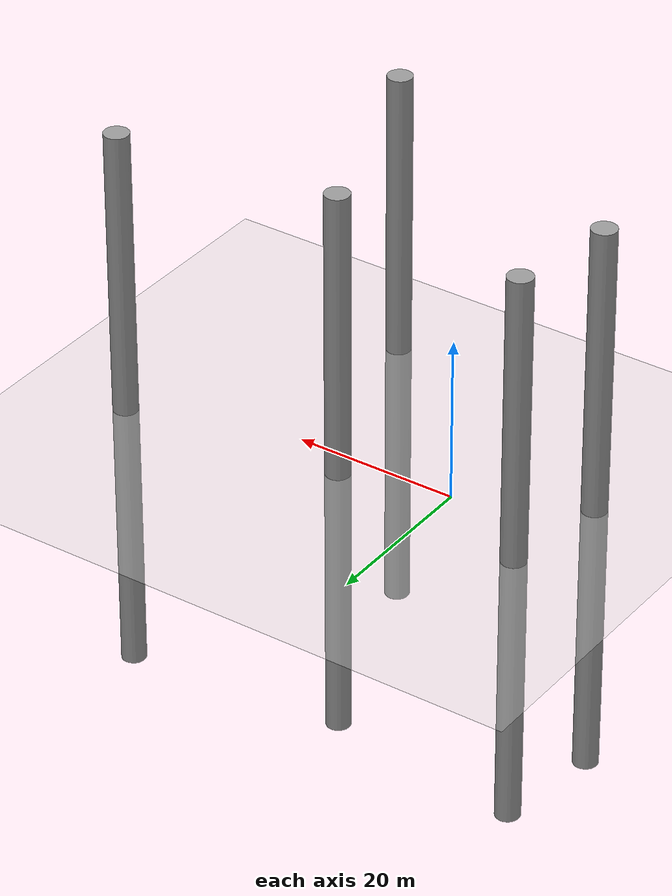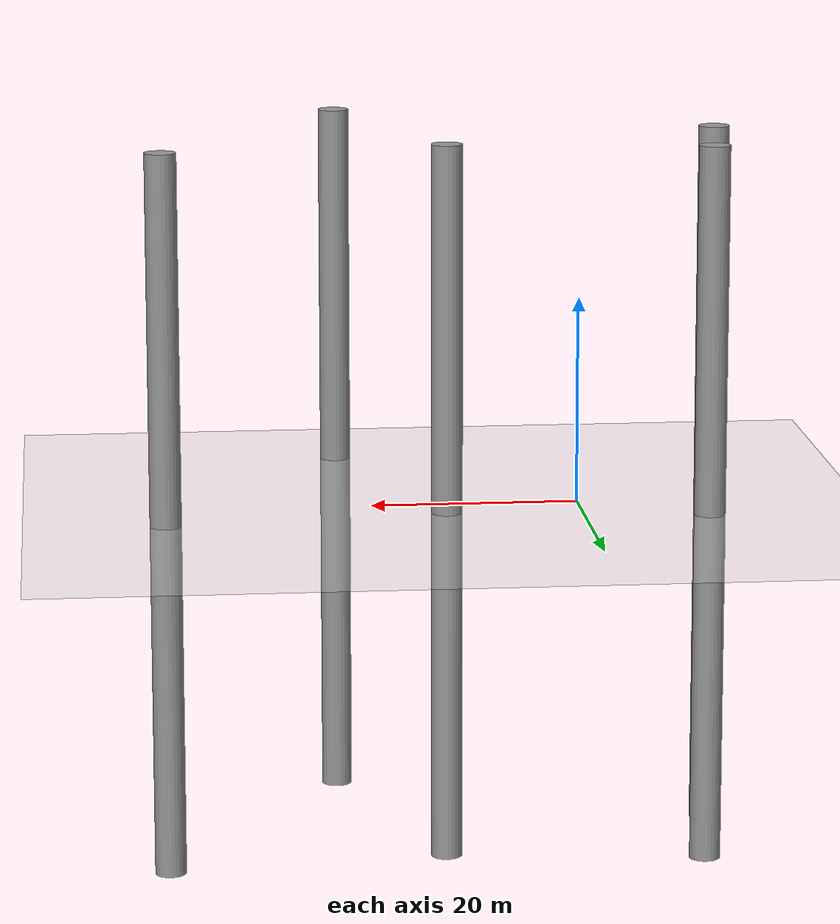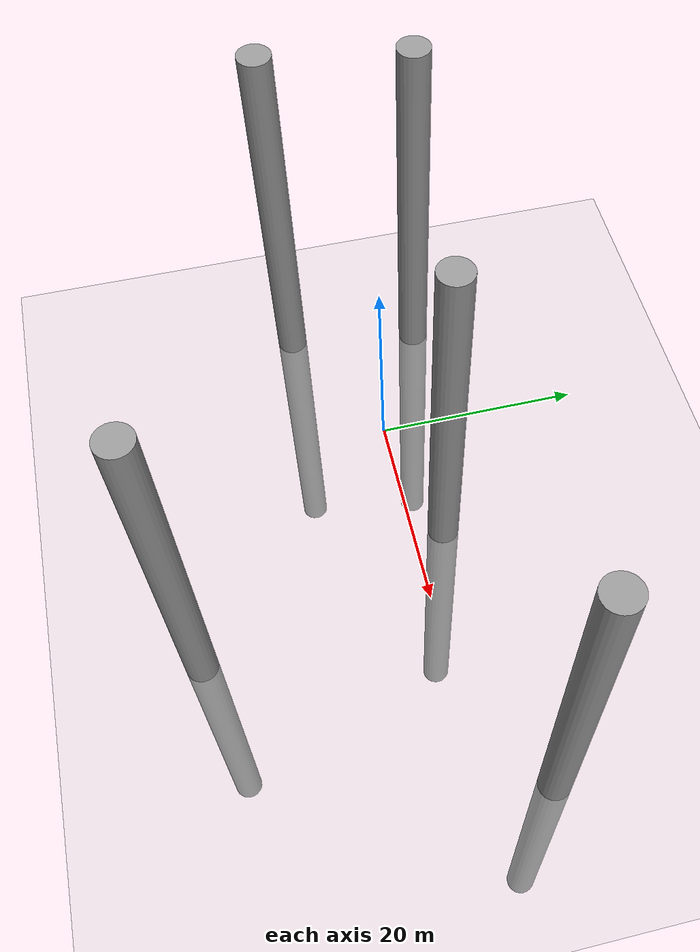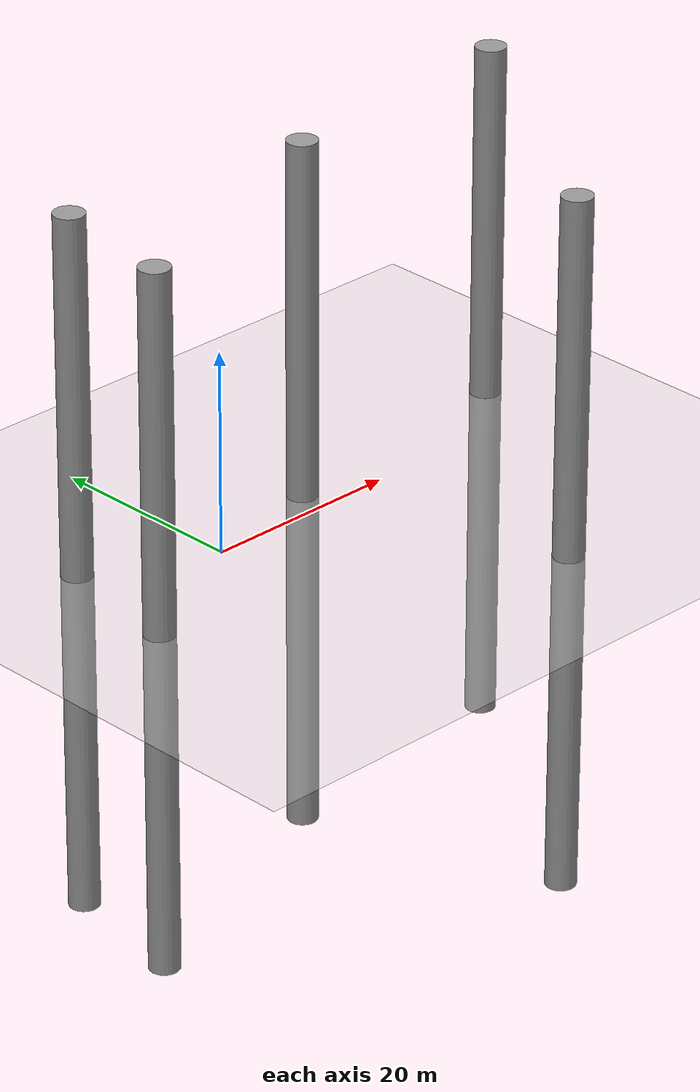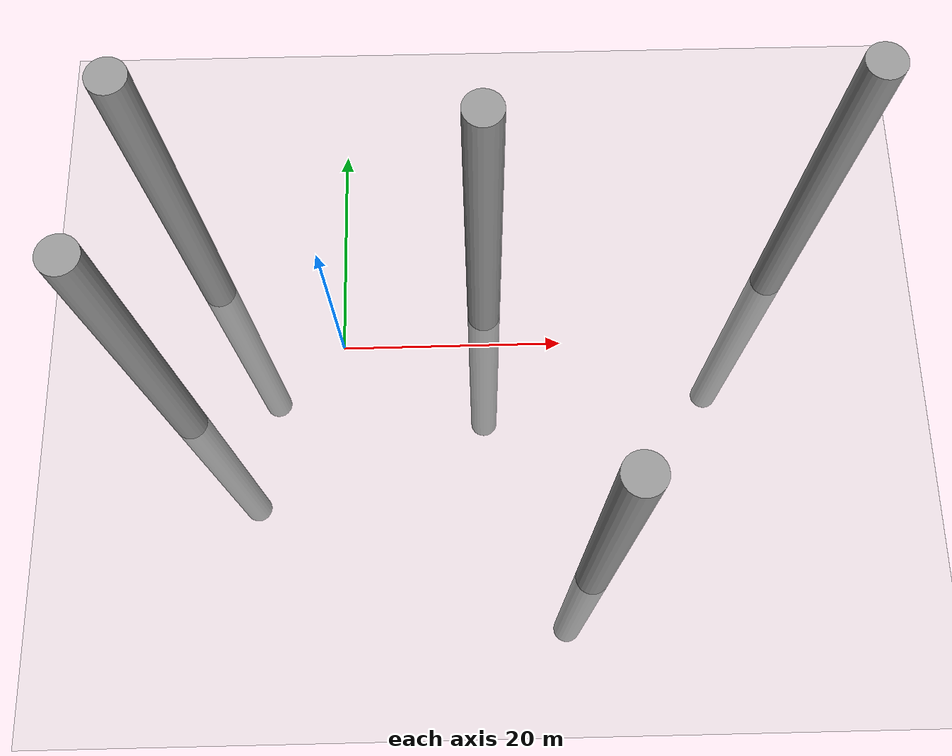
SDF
<sdf version="1.4">
 <world name="default">
  <scene><ambient>0.5 0.5 0.5 1</ambient><background>0.5 0.5 0.5 1</background><shadows>false</shadows></scene>
  <plugin name="ros_interface_plugin" filename="librotors_gazebo_ros_interface_plugin.so"/>
  <plugin name="gazebo_octomap" filename="librotors_gazebo_octomap_plugin.so"/>
  <physics type="ode">
   <gravity>0 0 -9.81</gravity>
   <ode>
    <solver><type>quick</type><iters>50</iters><sor>1.8</sor></solver>
    <constraints>
     <cfm>0.0</cfm>
     <erp>0.2</erp>
     <contact_max_correcting_vel>100.0</contact_max_correcting_vel>
     <contact_surface_layer>0.01</contact_surface_layer>
    </constraints>
   </ode>
   <real_time_update_rate>250</real_time_update_rate>
   <real_time_factor>1</real_time_factor>
   <max_step_size>0.004</max_step_size>
  </physics>
  <light name="directional_light_1" type="directional">
   <cast_shadows>false</cast_shadows>
   <pose>0 0 30 0.1 0.1 0</pose>
   <diffuse>1.0 1.0 1.0 1</diffuse>
   <specular>.1 .1 .1 1</specular>
   <attenuation><range>300</range></attenuation>
   <direction>0.1 0.1 -1</direction>
  </light>
  <include><uri>model://ground_plane</uri></include>
  <model name="unit_cylinder1">
   <pose>-14.0 -7.0 0.5 0 -0 0</pose>
   <link name="link">
    <inertial>
     <mass>1</mass>
     <inertia><ixx>0.145833</ixx><ixy>0</ixy><ixz>0</ixz><iyy>0.145833</iyy><iyz>0</iyz><izz>0.125</izz></inertia>
    </inertial>
    <collision name="collision">
     <geometry><cylinder><radius>1.5</radius><length>70.0</length></cylinder></geometry>
    </collision>
    <visual name="visual">
     <geometry><cylinder><radius>1.5</radius><length>70.0</length></cylinder></geometry>
     <material>
      <script><name>Gazebo/Grey</name><uri>file://media/materials/scripts/gazebo.material</uri></script>
     </material>
    </visual>
   </link>
   <static>1</static>
  </model>
  <model name="unit_cylinder2">
   <pose>13.0 3.0 0.5 0 -0 0</pose>
   <link name="link">
    <inertial>
     <mass>1</mass>
     <inertia><ixx>0.145833</ixx><ixy>0</ixy><ixz>0</ixz><iyy>0.145833</iyy><iyz>0</iyz><izz>0.125</izz></inertia>
    </inertial>
    <collision name="collision">
     <geometry><cylinder><radius>1.5</radius><length>70.0</length></cylinder></geometry>
    </collision>
    <visual name="visual">
     <geometry><cylinder><radius>1.5</radius><length>70.0</length></cylinder></geometry>
     <material>
      <script><name>Gazebo/Grey</name><uri>file://media/materials/scripts/gazebo.material</uri></script>
     </material>
    </visual>
   </link>
   <static>1</static>
  </model>
  <model name="unit_cylinder3">
   <pose>-12.0 6.0 0.5 0 -0 0</pose>
   <link name="link">
    <inertial>
     <mass>1</mass>
     <inertia><ixx>0.145833</ixx><ixy>0</ixy><ixz>0</ixz><iyy>0.145833</iyy><iyz>0</iyz><izz>0.125</izz></inertia>
    </inertial>
    <collision name="collision">
     <geometry><cylinder><radius>1.5</radius><length>70.0</length></cylinder></geometry>
    </collision>
    <visual name="visual">
     <geometry><cylinder><radius>1.5</radius><length>70.0</length></cylinder></geometry>
     <material>
      <script><name>Gazebo/Grey</name><uri>file://media/materials/scripts/gazebo.material</uri></script>
     </material>
    </visual>
   </link>
   <static>1</static>
  </model>
  <model name="unit_cylinder4">
   <pose>40.0 6.0 0.5 0 -0 0</pose>
   <link name="link">
    <inertial>
     <mass>1</mass>
     <inertia><ixx>0.145833</ixx><ixy>0</ixy><ixz>0</ixz><iyy>0.145833</iyy><iyz>0</iyz><izz>0.125</izz></inertia>
    </inertial>
    <collision name="collision">
     <geometry><cylinder><radius>1.5</radius><length>70.0</length></cylinder></geometry>
    </collision>
    <visual name="visual">
     <geometry><cylinder><radius>1.5</radius><length>70.0</length></cylinder></geometry>
     <material>
      <script><name>Gazebo/Grey</name><uri>file://media/materials/scripts/gazebo.material</uri></script>
     </material>
    </visual>
   </link>
   <static>1</static>
  </model>
  <model name="unit_cylinder5">
   <pose>22.0 -22.0 0.5 0 -0 0</pose>
   <link name="link">
    <inertial>
     <mass>1</mass>
     <inertia><ixx>0.145833</ixx><ixy>0</ixy><ixz>0</ixz><iyy>0.145833</iyy><iyz>0</iyz><izz>0.125</izz></inertia>
    </inertial>
    <collision name="collision">
     <geometry><cylinder><radius>1.5</radius><length>70.0</length></cylinder></geometry>
    </collision>
    <visual name="visual">
     <geometry><cylinder><radius>1.5</radius><length>70.0</length></cylinder></geometry>
     <material>
      <script><name>Gazebo/Grey</name><uri>file://media/materials/scripts/gazebo.material</uri></script>
     </material>
    </visual>
   </link>
   <static>1</static>
  </model>
 </world>
</sdf>
